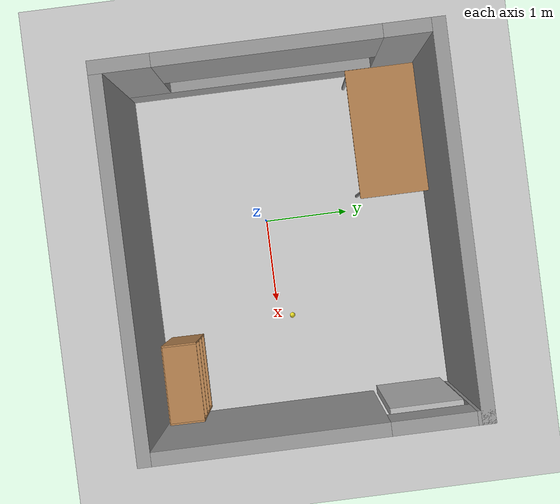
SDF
<sdf version="1.7">
 <world name="default">
  <light name="sun" type="directional">
   <pose>0 0 10 0 -0 0</pose>
   <diffuse>0.8 0.8 0.8 1</diffuse>
   <specular>0.2 0.2 0.2 1</specular>
   <attenuation>
    <range>1000</range>
    <constant>0.9</constant>
    <linear>0.01</linear>
    <quadratic>0.001</quadratic>
   </attenuation>
   <direction>-0.5 0.1 -0.9</direction>
   <spot><inner_angle>0</inner_angle><outer_angle>0</outer_angle><falloff>0</falloff></spot>
  </light>
  <model name="ground_plane">
   <static>1</static>
   <link name="link">
    <collision name="collision">
     <geometry><plane><normal>0 0 1</normal><size>100 100</size></plane></geometry>
     <surface>
      <contact><collide_bitmask>65535</collide_bitmask></contact>
      <friction><ode><mu>100</mu><mu2>50</mu2></ode></friction>
     </surface>
    </collision>
    <visual name="visual">
     <cast_shadows>0</cast_shadows>
     <geometry><plane><normal>0 0 1</normal><size>100 100</size></plane></geometry>
     <material>
      <script><uri>file://media/materials/scripts/gazebo.material</uri><name>Gazebo/Grey</name></script>
     </material>
    </visual>
   </link>
  </model>
  <gravity>0 0 -9.8</gravity>
  <magnetic_field>6e-06 2.3e-05 -4.2e-05</magnetic_field>
  <atmosphere type="adiabatic"/>
  <physics type="ode">
   <max_step_size>0.001</max_step_size>
   <real_time_factor>1</real_time_factor>
   <real_time_update_rate>1000</real_time_update_rate>
  </physics>
  <scene><ambient>0.4 0.4 0.4 1</ambient><background>0.7 0.7 0.7 1</background><shadows>1</shadows></scene>
  <audio><device>default</device></audio>
  <spherical_coordinates>
   <surface_model>EARTH_WGS84</surface_model>
   <latitude_deg>0</latitude_deg>
   <longitude_deg>0</longitude_deg>
   <elevation>0</elevation>
   <heading_deg>0</heading_deg>
  </spherical_coordinates>
  <model name="bedroom">
   <pose>0.548448 1.96859 0 0 -0 0</pose>
   <link name="Wall_0">
    <collision name="Wall_0_Collision">
     <geometry><box><size>4.25 0.15 2.5</size></box></geometry>
     <pose>0 0 1.25 0 -0 0</pose>
    </collision>
    <visual name="Wall_0_Visual">
     <pose>0 0 1.25 0 -0 0</pose>
     <geometry><box><size>4.25 0.15 2.5</size></box></geometry>
     <material>
      <script><uri>file://media/materials/scripts/gazebo.material</uri><name>Gazebo/Grey</name></script>
      <ambient>1 1 1 1</ambient>
     </material>
     <meta><layer>0</layer></meta>
    </visual>
    <pose>-0.249619 0.102935 0 0 -0 3.14159</pose>
   </link>
   <link name="Wall_5">
    <pose>-2.29962 -1.69707 0 0 -0 -1.5708</pose>
    <visual name="Wall_5_Visual_0">
     <pose>-1.54497 0 1.25 0 -0 0</pose>
     <geometry><box><size>0.660061 0.15 2.5</size></box></geometry>
     <material>
      <script><uri>file://media/materials/scripts/gazebo.material</uri><name>Gazebo/Grey</name></script>
      <ambient>1 1 1 1</ambient>
     </material>
     <meta><layer>0</layer></meta>
    </visual>
    <collision name="Wall_5_Collision_0">
     <geometry><box><size>0.660061 0.15 2.5</size></box></geometry>
     <pose>-1.54497 0 1.25 0 -0 0</pose>
    </collision>
    <visual name="Wall_5_Visual_1">
     <pose>0.330031 0 0.25 0 -0 0</pose>
     <geometry><box><size>3.08994 0.15 0.5</size></box></geometry>
     <material>
      <script><uri>file://media/materials/scripts/gazebo.material</uri><name>Gazebo/Grey</name></script>
      <ambient>1 1 1 1</ambient>
     </material>
     <meta><layer>0</layer></meta>
    </visual>
    <collision name="Wall_5_Collision_1">
     <geometry><box><size>3.08994 0.15 0.5</size></box></geometry>
     <pose>0.330031 0 0.25 0 -0 0</pose>
    </collision>
    <visual name="Wall_5_Visual_2">
     <pose>1.545 0 1.5 0 -0 0</pose>
     <geometry><box><size>0.660002 0.15 2</size></box></geometry>
     <material>
      <script><uri>file://media/materials/scripts/gazebo.material</uri><name>Gazebo/Grey</name></script>
      <ambient>1 1 1 1</ambient>
     </material>
     <meta><layer>0</layer></meta>
    </visual>
    <collision name="Wall_5_Collision_2">
     <geometry><box><size>0.660002 0.15 2</size></box></geometry>
     <pose>1.545 0 1.5 0 -0 0</pose>
    </collision>
    <visual name="Wall_5_Visual_3">
     <pose>3e-05 0 1.9 0 -0 0</pose>
     <geometry><box><size>2.42994 0.15 1.2</size></box></geometry>
     <material>
      <script><uri>file://media/materials/scripts/gazebo.material</uri><name>Gazebo/Grey</name></script>
      <ambient>1 1 1 1</ambient>
     </material>
     <meta><layer>0</layer></meta>
    </visual>
    <collision name="Wall_5_Collision_3">
     <geometry><box><size>2.42994 0.15 1.2</size></box></geometry>
     <pose>3e-05 0 1.9 0 -0 0</pose>
    </collision>
   </link>
   <link name="Wall_6">
    <collision name="Wall_6_Collision">
     <geometry><box><size>4.25 0.15 2.5</size></box></geometry>
     <pose>0 0 1.25 0 -0 0</pose>
    </collision>
    <visual name="Wall_6_Visual">
     <pose>0 0 1.25 0 -0 0</pose>
     <geometry><box><size>4.25 0.15 2.5</size></box></geometry>
     <material>
      <script><uri>file://media/materials/scripts/gazebo.material</uri><name>Gazebo/Grey</name></script>
      <ambient>1 1 1 1</ambient>
     </material>
     <meta><layer>0</layer></meta>
    </visual>
    <pose>-0.249619 -3.49707 0 0 -0 0</pose>
   </link>
   <link name="Wall_7">
    <pose>1.80038 -1.69707 0 0 -0 1.5708</pose>
    <visual name="Wall_7_Visual_0">
     <pose>-0.544324 0 1.25 0 -0 0</pose>
     <geometry><box><size>2.66135 0.15 2.5</size></box></geometry>
     <material>
      <script><uri>file://media/materials/scripts/gazebo.material</uri><name>Gazebo/Grey</name></script>
      <ambient>1 1 1 1</ambient>
     </material>
     <meta><layer>0</layer></meta>
    </visual>
    <collision name="Wall_7_Collision_0">
     <geometry><box><size>2.66135 0.15 2.5</size></box></geometry>
     <pose>-0.544324 0 1.25 0 -0 0</pose>
    </collision>
    <visual name="Wall_7_Visual_1">
     <pose>1.78068 0 1.25 0 -0 0</pose>
     <geometry><box><size>0.188648 0.15 2.5</size></box></geometry>
     <material>
      <script><uri>file://media/materials/scripts/gazebo.material</uri><name>Gazebo/Grey</name></script>
      <ambient>1 1 1 1</ambient>
     </material>
     <meta><layer>0</layer></meta>
    </visual>
    <collision name="Wall_7_Collision_1">
     <geometry><box><size>0.188648 0.15 2.5</size></box></geometry>
     <pose>1.78068 0 1.25 0 -0 0</pose>
    </collision>
    <visual name="Wall_7_Visual_2">
     <pose>1.23635 0 2.25 0 -0 0</pose>
     <geometry><box><size>0.9 0.15 0.5</size></box></geometry>
     <material>
      <script><uri>file://media/materials/scripts/gazebo.material</uri><name>Gazebo/Grey</name></script>
      <ambient>1 1 1 1</ambient>
     </material>
     <meta><layer>0</layer></meta>
    </visual>
    <collision name="Wall_7_Collision_2">
     <geometry><box><size>0.9 0.15 0.5</size></box></geometry>
     <pose>1.23635 0 2.25 0 -0 0</pose>
    </collision>
   </link>
   <static>1</static>
  </model>
  <model name="bookshelf">
   <static>1</static>
   <link name="link">
    <inertial><mass>1</mass></inertial>
    <collision name="back">
     <pose>0 0.005 0.6 0 -0 0</pose>
     <geometry><box><size>0.9 0.01 1.2</size></box></geometry>
    </collision>
    <visual name="visual1">
     <pose>0 0.005 0.6 0 -0 0</pose>
     <geometry><box><size>0.9 0.01 1.2</size></box></geometry>
     <material>
      <script><uri>file://media/materials/scripts/gazebo.material</uri><name>Gazebo/Wood</name></script>
     </material>
    </visual>
    <collision name="left_side">
     <pose>0.45 -0.195 0.6 0 -0 0</pose>
     <geometry><box><size>0.02 0.4 1.2</size></box></geometry>
    </collision>
    <visual name="visual2">
     <pose>0.45 -0.195 0.6 0 -0 0</pose>
     <geometry><box><size>0.02 0.4 1.2</size></box></geometry>
     <material>
      <script><uri>file://media/materials/scripts/gazebo.material</uri><name>Gazebo/Wood</name></script>
     </material>
    </visual>
    <collision name="right_side">
     <pose>-0.45 -0.195 0.6 0 -0 0</pose>
     <geometry><box><size>0.02 0.4 1.2</size></box></geometry>
    </collision>
    <visual name="visual3">
     <pose>-0.45 -0.195 0.6 0 -0 0</pose>
     <geometry><box><size>0.02 0.4 1.2</size></box></geometry>
     <material>
      <script><uri>file://media/materials/scripts/gazebo.material</uri><name>Gazebo/Wood</name></script>
     </material>
    </visual>
    <collision name="bottom">
     <pose>0 -0.195 0.03 0 -0 0</pose>
     <geometry><box><size>0.88 0.4 0.06</size></box></geometry>
    </collision>
    <visual name="visual4">
     <pose>0 -0.195 0.03 0 -0 0</pose>
     <geometry><box><size>0.88 0.4 0.06</size></box></geometry>
     <material>
      <script><uri>file://media/materials/scripts/gazebo.material</uri><name>Gazebo/Wood</name></script>
     </material>
    </visual>
    <collision name="top">
     <pose>0 -0.195 1.19 0 -0 0</pose>
     <geometry><box><size>0.88 0.4 0.02</size></box></geometry>
    </collision>
    <visual name="visual5">
     <pose>0 -0.195 1.19 0 -0 0</pose>
     <geometry><box><size>0.88 0.4 0.02</size></box></geometry>
     <material>
      <script><uri>file://media/materials/scripts/gazebo.material</uri><name>Gazebo/Wood</name></script>
     </material>
    </visual>
    <collision name="low_shelf">
     <pose>0 -0.195 0.43 0 -0 0</pose>
     <geometry><box><size>0.88 0.4 0.02</size></box></geometry>
    </collision>
    <visual name="visual6">
     <pose>0 -0.195 0.43 0 -0 0</pose>
     <geometry><box><size>0.88 0.4 0.02</size></box></geometry>
     <material>
      <script><uri>file://media/materials/scripts/gazebo.material</uri><name>Gazebo/Wood</name></script>
     </material>
    </visual>
    <collision name="high_shelf">
     <pose>0 -0.195 0.8 0 -0 0</pose>
     <geometry><box><size>0.88 0.4 0.02</size></box></geometry>
    </collision>
    <visual name="visual7">
     <pose>0 -0.195 0.8 0 -0 0</pose>
     <geometry><box><size>0.88 0.4 0.02</size></box></geometry>
     <material>
      <script><uri>file://media/materials/scripts/gazebo.material</uri><name>Gazebo/Wood</name></script>
     </material>
    </visual>
   </link>
   <pose>1.75889 -1.3606 0 0 -0 3.13429</pose>
  </model>
  <model name="table">
   <static>1</static>
   <link name="link">
    <collision name="surface">
     <pose>0 0 1 0 -0 0</pose>
     <geometry><box><size>1.5 0.8 0.03</size></box></geometry>
     <surface><friction><ode><mu>0.6</mu><mu2>0.6</mu2></ode></friction></surface>
    </collision>
    <visual name="visual1">
     <pose>0 0 1 0 -0 0</pose>
     <geometry><box><size>1.5 0.8 0.03</size></box></geometry>
     <material>
      <script><uri>file://media/materials/scripts/gazebo.material</uri><name>Gazebo/Wood</name></script>
     </material>
    </visual>
    <collision name="front_left_leg">
     <pose>0.68 0.38 0.5 0 -0 0</pose>
     <geometry><cylinder><radius>0.02</radius><length>1</length></cylinder></geometry>
    </collision>
    <visual name="front_left_leg">
     <pose>0.68 0.38 0.5 0 -0 0</pose>
     <geometry><cylinder><radius>0.02</radius><length>1</length></cylinder></geometry>
     <material>
      <script><uri>file://media/materials/scripts/gazebo.material</uri><name>Gazebo/Grey</name></script>
     </material>
    </visual>
    <collision name="front_right_leg">
     <pose>0.68 -0.38 0.5 0 -0 0</pose>
     <geometry><cylinder><radius>0.02</radius><length>1</length></cylinder></geometry>
    </collision>
    <visual name="front_right_leg">
     <pose>0.68 -0.38 0.5 0 -0 0</pose>
     <geometry><cylinder><radius>0.02</radius><length>1</length></cylinder></geometry>
     <material>
      <script><uri>file://media/materials/scripts/gazebo.material</uri><name>Gazebo/Grey</name></script>
     </material>
    </visual>
    <collision name="back_right_leg">
     <pose>-0.68 -0.38 0.5 0 -0 0</pose>
     <geometry><cylinder><radius>0.02</radius><length>1</length></cylinder></geometry>
    </collision>
    <visual name="back_right_leg">
     <pose>-0.68 -0.38 0.5 0 -0 0</pose>
     <geometry><cylinder><radius>0.02</radius><length>1</length></cylinder></geometry>
     <material>
      <script><uri>file://media/materials/scripts/gazebo.material</uri><name>Gazebo/Grey</name></script>
     </material>
    </visual>
    <collision name="back_left_leg">
     <pose>-0.68 0.38 0.5 0 -0 0</pose>
     <geometry><cylinder><radius>0.02</radius><length>1</length></cylinder></geometry>
    </collision>
    <visual name="back_left_leg">
     <pose>-0.68 0.38 0.5 0 -0 0</pose>
     <geometry><cylinder><radius>0.02</radius><length>1</length></cylinder></geometry>
     <material>
      <script><uri>file://media/materials/scripts/gazebo.material</uri><name>Gazebo/Grey</name></script>
     </material>
    </visual>
   </link>
   <pose>-0.850188 1.53588 0 0 -0 0</pose>
  </model>
  <model name="door_08x2m">
   <link name="link">
    <visual name="visual">
     <geometry><box><size>0.1 0.8 2</size></box></geometry>
     <material>
      <script>
       <uri>https://fuel.ignitionrobotics.org/1.0/sebbyjp/models/door_08x2m/1/files/material/script</uri>
       <uri>https://fuel.ignitionrobotics.org/1.0/sebbyjp/models/door_08x2m/1/files/material/textures</uri>
       <name>Custom/door_08x2m</name>
      </script>
     </material>
    </visual>
   </link>
   <static>1</static>
   <pose>2.2662 1.50253 0.985792 0 -0 0</pose>
  </model>
  <model name="tennis_ball">
   <link name="link">
    <inertial>
     <mass>1</mass>
     <inertia><ixx>0.1</ixx><ixy>0</ixy><ixz>0</ixz><iyy>0.1</iyy><iyz>0</iyz><izz>0.1</izz></inertia>
    </inertial>
    <visual name="visual">
     <geometry><sphere><radius>0.033</radius></sphere></geometry>
     <material>
      <script><name>Gazebo/Yellow</name><uri>file://media/materials/scripts/gazebo.material</uri></script>
      <shader type="pixel"><normal_map>__default__</normal_map></shader>
      <ambient>1 1 0 1</ambient>
      <diffuse>1 1 0 1</diffuse>
      <emissive>0 0 0 1</emissive>
     </material>
    </visual>
    <collision name="collision">
     <geometry><sphere><radius>0.033</radius></sphere></geometry>
     <surface>
      <friction>
       <ode><mu>1</mu><mu2>1</mu2><fdir1>0 0 0</fdir1><slip1>0</slip1><slip2>0</slip2></ode>
       <torsional>
        <coefficient>1</coefficient>
        <patch_radius>0</patch_radius>
        <surface_radius>0</surface_radius>
        <use_patch_radius>1</use_patch_radius>
        <ode><slip>0</slip></ode>
       </torsional>
      </friction>
      <bounce><restitution_coefficient>0</restitution_coefficient><threshold>1e+06</threshold></bounce>
      <contact>
       <collide_without_contact>0</collide_without_contact>
       <collide_without_contact_bitmask>1</collide_without_contact_bitmask>
       <collide_bitmask>1</collide_bitmask>
       <ode>
        <soft_cfm>0</soft_cfm>
        <soft_erp>0.2</soft_erp>
        <kp>1e+13</kp>
        <kd>1</kd>
        <max_vel>0.01</max_vel>
        <min_depth>0</min_depth>
       </ode>
       <bullet>
        <split_impulse>1</split_impulse>
        <split_impulse_penetration_threshold>-0.01</split_impulse_penetration_threshold>
        <soft_cfm>0</soft_cfm>
        <soft_erp>0.2</soft_erp>
        <kp>1e+13</kp>
        <kd>1</kd>
       </bullet>
      </contact>
     </surface>
    </collision>
   </link>
   <static>0</static>
   <pose>1.20548 0.172254 0.033 0 -0 0</pose>
  </model>
 </world>
</sdf>
